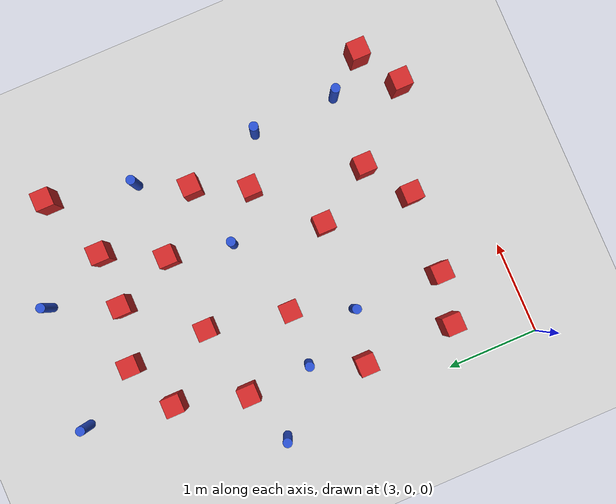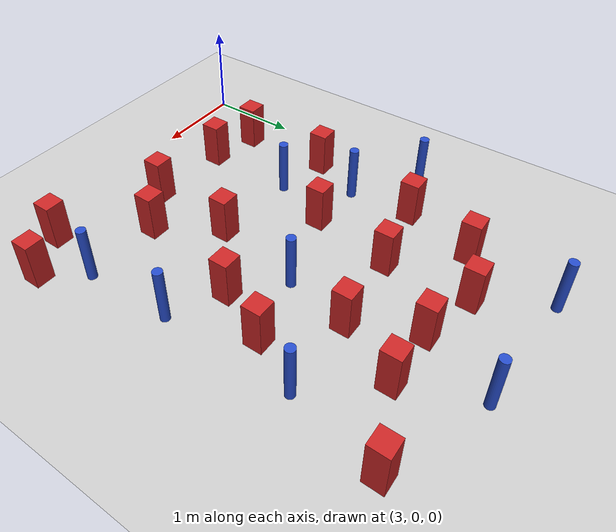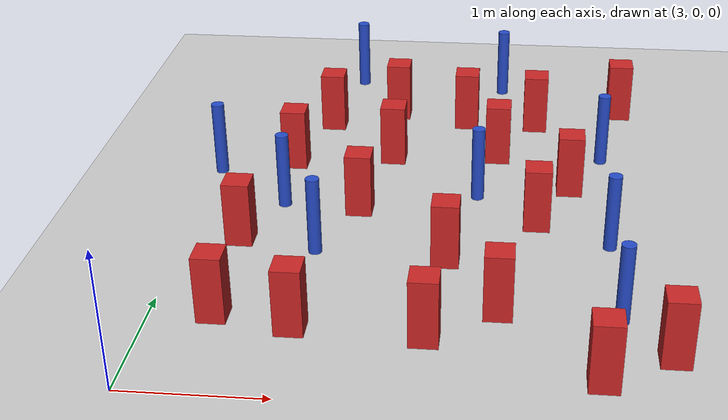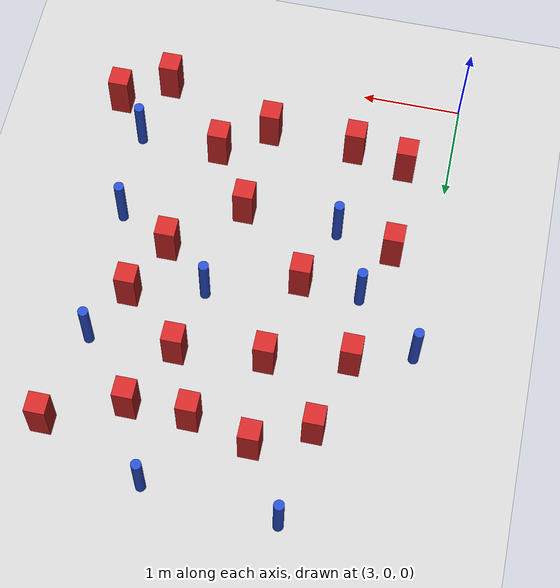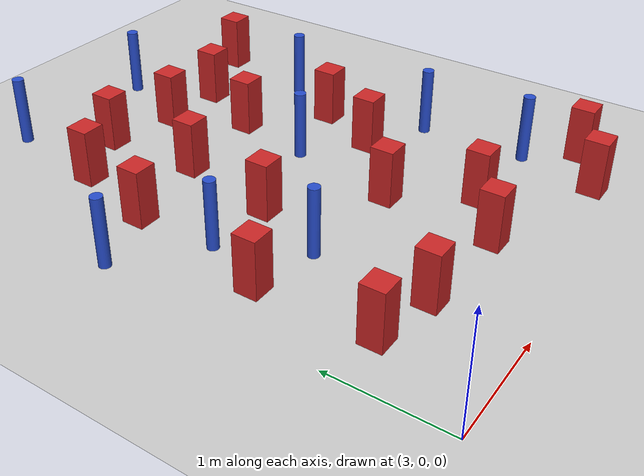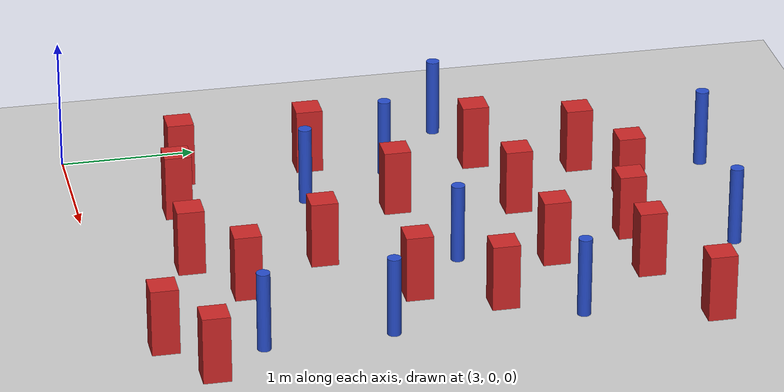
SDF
<sdf version="1.6">
 <world name="default">
  <model name="ground_plane">
   <static>1</static>
   <link name="link">
    <collision name="collision">
     <geometry><plane><normal>0 0 1</normal><size>100 100</size></plane></geometry>
     <surface><friction><ode><mu>100</mu><mu2>50</mu2></ode></friction></surface>
    </collision>
    <visual name="visual">
     <cast_shadows>0</cast_shadows>
     <geometry><plane><normal>0 0 1</normal><size>100 100</size></plane></geometry>
     <material>
      <ambient>1.0 1.0 1.0 1.0</ambient>
      <diffuse>0.8 0.8 0.8 1.0</diffuse>
      <specular>0.01 0.01 0.01 1.000000</specular>
     </material>
    </visual>
   </link>
  </model>
  <model name="square_post_obstacle1">
   <static>true</static>
   <pose>3.60561085752 3.06510060845 -6.11067671241e-07 -5.50515727128e-06 -8.79689657224e-07 2.37013304536e-05</pose>
   <link name="link">
    <pose>0 0 0.25 0 -0 0</pose>
    <inertial>
     <mass>100</mass>
     <inertia>
      <ixx>0.166667</ixx>
      <ixy>0</ixy>
      <ixz>0</ixz>
      <iyy>0.166667</iyy>
      <iyz>0</iyz>
      <izz>0.166667</izz>
     </inertia>
    </inertial>
    <collision name="collision"><geometry><box><size>.2 .2 .5</size></box></geometry></collision>
    <visual name="visual">
     <geometry><box><size>.2 .2 .5</size></box></geometry>
     <material>
      <script><name>Gazebo/Red</name><uri>file://media/materials/scripts/gazebo.material</uri></script>
     </material>
    </visual>
   </link>
  </model>
  <model name="pole_obstacle3">
   <static>true</static>
   <pose>6.12126041712 1.92768375661 -9.47619616065e-06 5.49618799738e-07 2.36310414071e-07 -1.55090534796e-07</pose>
   <link name="link">
    <pose>0 0 0.3 0 -0 0</pose>
    <inertial>
     <mass>1</mass>
     <inertia><ixx>0.145833</ixx><ixy>0</ixy><ixz>0</ixz><iyy>0.145833</iyy><iyz>0</iyz><izz>0.125</izz></inertia>
    </inertial>
    <collision name="collision">
     <geometry><cylinder><radius>0.05</radius><length>.6</length></cylinder></geometry>
    </collision>
    <visual name="visual">
     <geometry><cylinder><radius>0.05</radius><length>.6</length></cylinder></geometry>
     <material>
      <script><name>Gazebo/Blue</name><uri>file://media/materials/scripts/gazebo.material</uri></script>
     </material>
    </visual>
   </link>
  </model>
  <model name="pole_obstacle10">
   <static>true</static>
   <pose>6.1121748208 3.30168363211 -9.47619616065e-06 5.49618799738e-07 2.36310414051e-07 -1.55090534805e-07</pose>
   <link name="link">
    <pose>0 0 0.3 0 -0 0</pose>
    <inertial>
     <mass>1</mass>
     <inertia><ixx>0.145833</ixx><ixy>0</ixy><ixz>0</ixz><iyy>0.145833</iyy><iyz>0</iyz><izz>0.125</izz></inertia>
    </inertial>
    <collision name="collision">
     <geometry><cylinder><radius>0.05</radius><length>.6</length></cylinder></geometry>
    </collision>
    <visual name="visual">
     <geometry><cylinder><radius>0.05</radius><length>.6</length></cylinder></geometry>
     <material>
      <script><name>Gazebo/Blue</name><uri>file://media/materials/scripts/gazebo.material</uri></script>
     </material>
    </visual>
   </link>
  </model>
  <model name="pole_obstacle24">
   <static>true</static>
   <pose>3.63870386104 2.3700347278 -9.47619616065e-06 5.49618799737e-07 2.36310414051e-07 -1.55090534807e-07</pose>
   <link name="link">
    <pose>0 0 0.3 0 -0 0</pose>
    <inertial>
     <mass>1</mass>
     <inertia><ixx>0.145833</ixx><ixy>0</ixy><ixz>0</ixz><iyy>0.145833</iyy><iyz>0</iyz><izz>0.125</izz></inertia>
    </inertial>
    <collision name="collision">
     <geometry><cylinder><radius>0.05</radius><length>.6</length></cylinder></geometry>
    </collision>
    <visual name="visual">
     <geometry><cylinder><radius>0.05</radius><length>.6</length></cylinder></geometry>
     <material>
      <script><name>Gazebo/Blue</name><uri>file://media/materials/scripts/gazebo.material</uri></script>
     </material>
    </visual>
   </link>
  </model>
  <model name="pole_obstacle45">
   <static>true</static>
   <pose>3.0238369806 2.87842673954 -9.47619616065e-06 5.49618799737e-07 2.36310414051e-07 -1.55090534807e-07</pose>
   <link name="link">
    <pose>0 0 0.3 0 -0 0</pose>
    <inertial>
     <mass>1</mass>
     <inertia><ixx>0.145833</ixx><ixy>0</ixy><ixz>0</ixz><iyy>0.145833</iyy><iyz>0</iyz><izz>0.125</izz></inertia>
    </inertial>
    <collision name="collision">
     <geometry><cylinder><radius>0.05</radius><length>.6</length></cylinder></geometry>
    </collision>
    <visual name="visual">
     <geometry><cylinder><radius>0.05</radius><length>.6</length></cylinder></geometry>
     <material>
      <script><name>Gazebo/Blue</name><uri>file://media/materials/scripts/gazebo.material</uri></script>
     </material>
    </visual>
   </link>
  </model>
  <model name="square_post_obstacle48">
   <static>true</static>
   <pose>4.4022666731 3.21294760835 -6.11067671241e-07 -5.50515727128e-06 -8.79689657224e-07 2.37013304536e-05</pose>
   <link name="link">
    <pose>0 0 0.25 0 -0 0</pose>
    <inertial>
     <mass>100</mass>
     <inertia>
      <ixx>0.166667</ixx>
      <ixy>0</ixy>
      <ixz>0</ixz>
      <iyy>0.166667</iyy>
      <iyz>0</iyz>
      <izz>0.166667</izz>
     </inertia>
    </inertial>
    <collision name="collision"><geometry><box><size>.2 .2 .5</size></box></geometry></collision>
    <visual name="visual">
     <geometry><box><size>.2 .2 .5</size></box></geometry>
     <material>
      <script><name>Gazebo/Red</name><uri>file://media/materials/scripts/gazebo.material</uri></script>
     </material>
    </visual>
   </link>
  </model>
  <model name="square_post_obstacle50">
   <static>true</static>
   <pose>4.86429123127 0.682569277794 -6.11067671241e-07 -5.50515727128e-06 -8.79689657224e-07 2.37013304536e-05</pose>
   <link name="link">
    <pose>0 0 0.25 0 -0 0</pose>
    <inertial>
     <mass>100</mass>
     <inertia>
      <ixx>0.166667</ixx>
      <ixy>0</ixy>
      <ixz>0</ixz>
      <iyy>0.166667</iyy>
      <iyz>0</iyz>
      <izz>0.166667</izz>
     </inertia>
    </inertial>
    <collision name="collision"><geometry><box><size>.2 .2 .5</size></box></geometry></collision>
    <visual name="visual">
     <geometry><box><size>.2 .2 .5</size></box></geometry>
     <material>
      <script><name>Gazebo/Red</name><uri>file://media/materials/scripts/gazebo.material</uri></script>
     </material>
    </visual>
   </link>
  </model>
  <model name="square_post_obstacle52">
   <static>true</static>
   <pose>3.4132791257 1.82123992366 -6.11067671241e-07 -5.50515727128e-06 -8.79689657224e-07 2.37013304536e-05</pose>
   <link name="link">
    <pose>0 0 0.25 0 -0 0</pose>
    <inertial>
     <mass>100</mass>
     <inertia>
      <ixx>0.166667</ixx>
      <ixy>0</ixy>
      <ixz>0</ixz>
      <iyy>0.166667</iyy>
      <iyz>0</iyz>
      <izz>0.166667</izz>
     </inertia>
    </inertial>
    <collision name="collision"><geometry><box><size>.2 .2 .5</size></box></geometry></collision>
    <visual name="visual">
     <geometry><box><size>.2 .2 .5</size></box></geometry>
     <material>
      <script><name>Gazebo/Red</name><uri>file://media/materials/scripts/gazebo.material</uri></script>
     </material>
    </visual>
   </link>
  </model>
  <model name="square_post_obstacle58">
   <static>true</static>
   <pose>5.58534849371 2.20756425732 -6.11067671241e-07 -5.50515727128e-06 -8.79689657224e-07 2.37013304536e-05</pose>
   <link name="link">
    <pose>0 0 0.25 0 -0 0</pose>
    <inertial>
     <mass>100</mass>
     <inertia>
      <ixx>0.166667</ixx>
      <ixy>0</ixy>
      <ixz>0</ixz>
      <iyy>0.166667</iyy>
      <iyz>0</iyz>
      <izz>0.166667</izz>
     </inertia>
    </inertial>
    <collision name="collision"><geometry><box><size>.2 .2 .5</size></box></geometry></collision>
    <visual name="visual">
     <geometry><box><size>.2 .2 .5</size></box></geometry>
     <material>
      <script><name>Gazebo/Red</name><uri>file://media/materials/scripts/gazebo.material</uri></script>
     </material>
    </visual>
   </link>
  </model>
  <model name="pole_obstacle60">
   <static>true</static>
   <pose>5.12357058062 2.60648602858 -9.47619616065e-06 5.49618799738e-07 2.36310414051e-07 -1.55090534805e-07</pose>
   <link name="link">
    <pose>0 0 0.3 0 -0 0</pose>
    <inertial>
     <mass>1</mass>
     <inertia><ixx>0.145833</ixx><ixy>0</ixy><ixz>0</ixz><iyy>0.145833</iyy><iyz>0</iyz><izz>0.125</izz></inertia>
    </inertial>
    <collision name="collision">
     <geometry><cylinder><radius>0.05</radius><length>.6</length></cylinder></geometry>
    </collision>
    <visual name="visual">
     <geometry><cylinder><radius>0.05</radius><length>.6</length></cylinder></geometry>
     <material>
      <script><name>Gazebo/Blue</name><uri>file://media/materials/scripts/gazebo.material</uri></script>
     </material>
    </visual>
   </link>
  </model>
  <model name="square_post_obstacle65">
   <static>true</static>
   <pose>3.44394849918 0.83601837643 -6.11067671241e-07 -5.50515727128e-06 -8.79689657224e-07 2.37013304536e-05</pose>
   <link name="link">
    <pose>0 0 0.25 0 -0 0</pose>
    <inertial>
     <mass>100</mass>
     <inertia>
      <ixx>0.166667</ixx>
      <ixy>0</ixy>
      <ixz>0</ixz>
      <iyy>0.166667</iyy>
      <iyz>0</iyz>
      <izz>0.166667</izz>
     </inertia>
    </inertial>
    <collision name="collision"><geometry><box><size>.2 .2 .5</size></box></geometry></collision>
    <visual name="visual">
     <geometry><box><size>.2 .2 .5</size></box></geometry>
     <material>
      <script><name>Gazebo/Red</name><uri>file://media/materials/scripts/gazebo.material</uri></script>
     </material>
    </visual>
   </link>
  </model>
  <model name="square_post_obstacle71">
   <static>true</static>
   <pose>3.81692374479 3.82107002358 -6.11067671241e-07 -5.50515727128e-06 -8.79689657224e-07 2.37013304536e-05</pose>
   <link name="link">
    <pose>0 0 0.25 0 -0 0</pose>
    <inertial>
     <mass>100</mass>
     <inertia>
      <ixx>0.166667</ixx>
      <ixy>0</ixy>
      <ixz>0</ixz>
      <iyy>0.166667</iyy>
      <iyz>0</iyz>
      <izz>0.166667</izz>
     </inertia>
    </inertial>
    <collision name="collision"><geometry><box><size>.2 .2 .5</size></box></geometry></collision>
    <visual name="visual">
     <geometry><box><size>.2 .2 .5</size></box></geometry>
     <material>
      <script><name>Gazebo/Red</name><uri>file://media/materials/scripts/gazebo.material</uri></script>
     </material>
    </visual>
   </link>
  </model>
  <model name="square_post_obstacle74">
   <static>true</static>
   <pose>5.56726960221 3.92317340426 -6.11067671241e-07 -5.50515727128e-06 -8.79689657224e-07 2.37013304536e-05</pose>
   <link name="link">
    <pose>0 0 0.25 0 -0 0</pose>
    <inertial>
     <mass>100</mass>
     <inertia>
      <ixx>0.166667</ixx>
      <ixy>0</ixy>
      <ixz>0</ixz>
      <iyy>0.166667</iyy>
      <iyz>0</iyz>
      <izz>0.166667</izz>
     </inertia>
    </inertial>
    <collision name="collision"><geometry><box><size>.2 .2 .5</size></box></geometry></collision>
    <visual name="visual">
     <geometry><box><size>.2 .2 .5</size></box></geometry>
     <material>
      <script><name>Gazebo/Red</name><uri>file://media/materials/scripts/gazebo.material</uri></script>
     </material>
    </visual>
   </link>
  </model>
  <model name="square_post_obstacle80">
   <static>true</static>
   <pose>5.99793431074 0.315845441952 -6.11067671241e-07 -5.50515727128e-06 -8.79689657224e-07 2.37013304536e-05</pose>
   <link name="link">
    <pose>0 0 0.25 0 -0 0</pose>
    <inertial>
     <mass>100</mass>
     <inertia>
      <ixx>0.166667</ixx>
      <ixy>0</ixy>
      <ixz>0</ixz>
      <iyy>0.166667</iyy>
      <iyz>0</iyz>
      <izz>0.166667</izz>
     </inertia>
    </inertial>
    <collision name="collision"><geometry><box><size>.2 .2 .5</size></box></geometry></collision>
    <visual name="visual">
     <geometry><box><size>.2 .2 .5</size></box></geometry>
     <material>
      <script><name>Gazebo/Red</name><uri>file://media/materials/scripts/gazebo.material</uri></script>
     </material>
    </visual>
   </link>
  </model>
  <model name="pole_obstacle98">
   <static>true</static>
   <pose>3.95911625656 4.75906808122 -9.47619616065e-06 5.49618799737e-07 2.36310414049e-07 -1.55090534808e-07</pose>
   <link name="link">
    <pose>0 0 0.3 0 -0 0</pose>
    <inertial>
     <mass>1</mass>
     <inertia><ixx>0.145833</ixx><ixy>0</ixy><ixz>0</ixz><iyy>0.145833</iyy><iyz>0</iyz><izz>0.125</izz></inertia>
    </inertial>
    <collision name="collision">
     <geometry><cylinder><radius>0.05</radius><length>.6</length></cylinder></geometry>
    </collision>
    <visual name="visual">
     <geometry><cylinder><radius>0.05</radius><length>.6</length></cylinder></geometry>
     <material>
      <script><name>Gazebo/Blue</name><uri>file://media/materials/scripts/gazebo.material</uri></script>
     </material>
    </visual>
   </link>
  </model>
  <model name="square_post_obstacle98">
   <static>true</static>
   <pose>4.93567388542 1.64514527499 -6.11067671241e-07 -5.50515727128e-06 -8.79689657224e-07 2.37013304536e-05</pose>
   <link name="link">
    <pose>0 0 0.25 0 -0 0</pose>
    <inertial>
     <mass>100</mass>
     <inertia>
      <ixx>0.166667</ixx>
      <ixy>0</ixy>
      <ixz>0</ixz>
      <iyy>0.166667</iyy>
      <iyz>0</iyz>
      <izz>0.166667</izz>
     </inertia>
    </inertial>
    <collision name="collision"><geometry><box><size>.2 .2 .5</size></box></geometry></collision>
    <visual name="visual">
     <geometry><box><size>.2 .2 .5</size></box></geometry>
     <material>
      <script><name>Gazebo/Red</name><uri>file://media/materials/scripts/gazebo.material</uri></script>
     </material>
    </visual>
   </link>
  </model>
  <model name="square_post_obstacle109">
   <static>true</static>
   <pose>4.23049179861 2.33039096919 -6.11067671241e-07 -5.50515727128e-06 -8.79689657224e-07 2.37013304536e-05</pose>
   <link name="link">
    <pose>0 0 0.25 0 -0 0</pose>
    <inertial>
     <mass>100</mass>
     <inertia>
      <ixx>0.166667</ixx>
      <ixy>0</ixy>
      <ixz>0</ixz>
      <iyy>0.166667</iyy>
      <iyz>0</iyz>
      <izz>0.166667</izz>
     </inertia>
    </inertial>
    <collision name="collision"><geometry><box><size>.2 .2 .5</size></box></geometry></collision>
    <visual name="visual">
     <geometry><box><size>.2 .2 .5</size></box></geometry>
     <material>
      <script><name>Gazebo/Red</name><uri>file://media/materials/scripts/gazebo.material</uri></script>
     </material>
    </visual>
   </link>
  </model>
  <model name="square_post_obstacle115">
   <static>true</static>
   <pose>5.84193627538 2.77699016452 -6.11067671241e-07 -5.50515727128e-06 -8.79689657224e-07 2.37013304536e-05</pose>
   <link name="link">
    <pose>0 0 0.25 0 -0 0</pose>
    <inertial>
     <mass>100</mass>
     <inertia>
      <ixx>0.166667</ixx>
      <ixy>0</ixy>
      <ixz>0</ixz>
      <iyy>0.166667</iyy>
      <iyz>0</iyz>
      <izz>0.166667</izz>
     </inertia>
    </inertial>
    <collision name="collision"><geometry><box><size>.2 .2 .5</size></box></geometry></collision>
    <visual name="visual">
     <geometry><box><size>.2 .2 .5</size></box></geometry>
     <material>
      <script><name>Gazebo/Red</name><uri>file://media/materials/scripts/gazebo.material</uri></script>
     </material>
    </visual>
   </link>
  </model>
  <model name="square_post_obstacle128">
   <static>true</static>
   <pose>6.45887169266 0.600241494292 -6.11067671241e-07 -5.50515727128e-06 -8.79689657224e-07 2.37013304536e-05</pose>
   <link name="link">
    <pose>0 0 0.25 0 -0 0</pose>
    <inertial>
     <mass>100</mass>
     <inertia>
      <ixx>0.166667</ixx>
      <ixy>0</ixy>
      <ixz>0</ixz>
      <iyy>0.166667</iyy>
      <iyz>0</iyz>
      <izz>0.166667</izz>
     </inertia>
    </inertial>
    <collision name="collision"><geometry><box><size>.2 .2 .5</size></box></geometry></collision>
    <visual name="visual">
     <geometry><box><size>.2 .2 .5</size></box></geometry>
     <material>
      <script><name>Gazebo/Red</name><uri>file://media/materials/scripts/gazebo.material</uri></script>
     </material>
    </visual>
   </link>
  </model>
  <model name="square_post_obstacle150">
   <static>true</static>
   <pose>6.30704758825 4.23295420032 -6.11067671241e-07 -5.50515727128e-06 -8.79689657224e-07 2.37013304536e-05</pose>
   <link name="link">
    <pose>0 0 0.25 0 -0 0</pose>
    <inertial>
     <mass>100</mass>
     <inertia>
      <ixx>0.166667</ixx>
      <ixy>0</ixy>
      <ixz>0</ixz>
      <iyy>0.166667</iyy>
      <iyz>0</iyz>
      <izz>0.166667</izz>
     </inertia>
    </inertial>
    <collision name="collision"><geometry><box><size>.2 .2 .5</size></box></geometry></collision>
    <visual name="visual">
     <geometry><box><size>.2 .2 .5</size></box></geometry>
     <material>
      <script><name>Gazebo/Red</name><uri>file://media/materials/scripts/gazebo.material</uri></script>
     </material>
    </visual>
   </link>
  </model>
  <model name="pole_obstacle177">
   <static>true</static>
   <pose>6.15233220444 0.996883784401 -9.47619616065e-06 5.49618799737e-07 2.36310414073e-07 -1.55090534792e-07</pose>
   <link name="link">
    <pose>0 0 0.3 0 -0 0</pose>
    <inertial>
     <mass>1</mass>
     <inertia><ixx>0.145833</ixx><ixy>0</ixy><ixz>0</ixz><iyy>0.145833</iyy><iyz>0</iyz><izz>0.125</izz></inertia>
    </inertial>
    <collision name="collision">
     <geometry><cylinder><radius>0.05</radius><length>.6</length></cylinder></geometry>
    </collision>
    <visual name="visual">
     <geometry><cylinder><radius>0.05</radius><length>.6</length></cylinder></geometry>
     <material>
      <script><name>Gazebo/Blue</name><uri>file://media/materials/scripts/gazebo.material</uri></script>
     </material>
    </visual>
   </link>
  </model>
  <model name="square_post_obstacle171">
   <static>true</static>
   <pose>4.360794451 4.08527384537 -6.11067671241e-07 -5.50515727128e-06 -8.79689657224e-07 2.37013304536e-05</pose>
   <link name="link">
    <pose>0 0 0.25 0 -0 0</pose>
    <inertial>
     <mass>100</mass>
     <inertia>
      <ixx>0.166667</ixx>
      <ixy>0</ixy>
      <ixz>0</ixz>
      <iyy>0.166667</iyy>
      <iyz>0</iyz>
      <izz>0.166667</izz>
     </inertia>
    </inertial>
    <collision name="collision"><geometry><box><size>.2 .2 .5</size></box></geometry></collision>
    <visual name="visual">
     <geometry><box><size>.2 .2 .5</size></box></geometry>
     <material>
      <script><name>Gazebo/Red</name><uri>file://media/materials/scripts/gazebo.material</uri></script>
     </material>
    </visual>
   </link>
  </model>
  <model name="square_post_obstacle172">
   <static>true</static>
   <pose>3.98167012698 0.731172233416 -6.11067671241e-07 -5.50515727128e-06 -8.79689657224e-07 2.37013304536e-05</pose>
   <link name="link">
    <pose>0 0 0.25 0 -0 0</pose>
    <inertial>
     <mass>100</mass>
     <inertia>
      <ixx>0.166667</ixx>
      <ixy>0</ixy>
      <ixz>0</ixz>
      <iyy>0.166667</iyy>
      <iyz>0</iyz>
      <izz>0.166667</izz>
     </inertia>
    </inertial>
    <collision name="collision"><geometry><box><size>.2 .2 .5</size></box></geometry></collision>
    <visual name="visual">
     <geometry><box><size>.2 .2 .5</size></box></geometry>
     <material>
      <script><name>Gazebo/Red</name><uri>file://media/materials/scripts/gazebo.material</uri></script>
     </material>
    </visual>
   </link>
  </model>
  <model name="pole_obstacle189">
   <static>true</static>
   <pose>5.26581461271 4.6521336075 -9.47619616065e-06 5.49618799737e-07 2.36310414037e-07 -1.55090534814e-07</pose>
   <link name="link">
    <pose>0 0 0.3 0 -0 0</pose>
    <inertial>
     <mass>1</mass>
     <inertia><ixx>0.145833</ixx><ixy>0</ixy><ixz>0</ixz><iyy>0.145833</iyy><iyz>0</iyz><izz>0.125</izz></inertia>
    </inertial>
    <collision name="collision">
     <geometry><cylinder><radius>0.05</radius><length>.6</length></cylinder></geometry>
    </collision>
    <visual name="visual">
     <geometry><cylinder><radius>0.05</radius><length>.6</length></cylinder></geometry>
     <material>
      <script><name>Gazebo/Blue</name><uri>file://media/materials/scripts/gazebo.material</uri></script>
     </material>
    </visual>
   </link>
  </model>
  <model name="square_post_obstacle183">
   <static>true</static>
   <pose>5.26068528676 3.29122552106 -6.11067671241e-07 -5.50515727128e-06 -8.79689657224e-07 2.37013304536e-05</pose>
   <link name="link">
    <pose>0 0 0.25 0 -0 0</pose>
    <inertial>
     <mass>100</mass>
     <inertia>
      <ixx>0.166667</ixx>
      <ixy>0</ixy>
      <ixz>0</ixz>
      <iyy>0.166667</iyy>
      <iyz>0</iyz>
      <izz>0.166667</izz>
     </inertia>
    </inertial>
    <collision name="collision"><geometry><box><size>.2 .2 .5</size></box></geometry></collision>
    <visual name="visual">
     <geometry><box><size>.2 .2 .5</size></box></geometry>
     <material>
      <script><name>Gazebo/Red</name><uri>file://media/materials/scripts/gazebo.material</uri></script>
     </material>
    </visual>
   </link>
  </model>
  <model name="square_post_obstacle195">
   <static>true</static>
   <pose>4.97167334849 3.93119242343 -6.11067671241e-07 -5.50515727128e-06 -8.79689657224e-07 2.37013304536e-05</pose>
   <link name="link">
    <pose>0 0 0.25 0 -0 0</pose>
    <inertial>
     <mass>100</mass>
     <inertia>
      <ixx>0.166667</ixx>
      <ixy>0</ixy>
      <ixz>0</ixz>
      <iyy>0.166667</iyy>
      <iyz>0</iyz>
      <izz>0.166667</izz>
     </inertia>
    </inertial>
    <collision name="collision"><geometry><box><size>.2 .2 .5</size></box></geometry></collision>
    <visual name="visual">
     <geometry><box><size>.2 .2 .5</size></box></geometry>
     <material>
      <script><name>Gazebo/Red</name><uri>file://media/materials/scripts/gazebo.material</uri></script>
     </material>
    </visual>
   </link>
  </model>
  <model name="pole_obstacle208">
   <static>true</static>
   <pose>3.98430784114 1.69866927319 -9.47619616065e-06 5.49618799738e-07 2.36310414074e-07 -1.55090534794e-07</pose>
   <link name="link">
    <pose>0 0 0.3 0 -0 0</pose>
    <inertial>
     <mass>1</mass>
     <inertia><ixx>0.145833</ixx><ixy>0</ixy><ixz>0</ixz><iyy>0.145833</iyy><iyz>0</iyz><izz>0.125</izz></inertia>
    </inertial>
    <collision name="collision">
     <geometry><cylinder><radius>0.05</radius><length>.6</length></cylinder></geometry>
    </collision>
    <visual name="visual">
     <geometry><cylinder><radius>0.05</radius><length>.6</length></cylinder></geometry>
     <material>
      <script><name>Gazebo/Blue</name><uri>file://media/materials/scripts/gazebo.material</uri></script>
     </material>
    </visual>
   </link>
  </model>
  <model name="square_post_obstacle216">
   <static>true</static>
   <pose>5.3312186098 1.01695151416 -6.11067671241e-07 -5.50515727128e-06 -8.79689657224e-07 2.37013304536e-05</pose>
   <link name="link">
    <pose>0 0 0.25 0 -0 0</pose>
    <inertial>
     <mass>100</mass>
     <inertia>
      <ixx>0.166667</ixx>
      <ixy>0</ixy>
      <ixz>0</ixz>
      <iyy>0.166667</iyy>
      <iyz>0</iyz>
      <izz>0.166667</izz>
     </inertia>
    </inertial>
    <collision name="collision"><geometry><box><size>.2 .2 .5</size></box></geometry></collision>
    <visual name="visual">
     <geometry><box><size>.2 .2 .5</size></box></geometry>
     <material>
      <script><name>Gazebo/Red</name><uri>file://media/materials/scripts/gazebo.material</uri></script>
     </material>
    </visual>
   </link>
  </model>
 </world>
</sdf>
